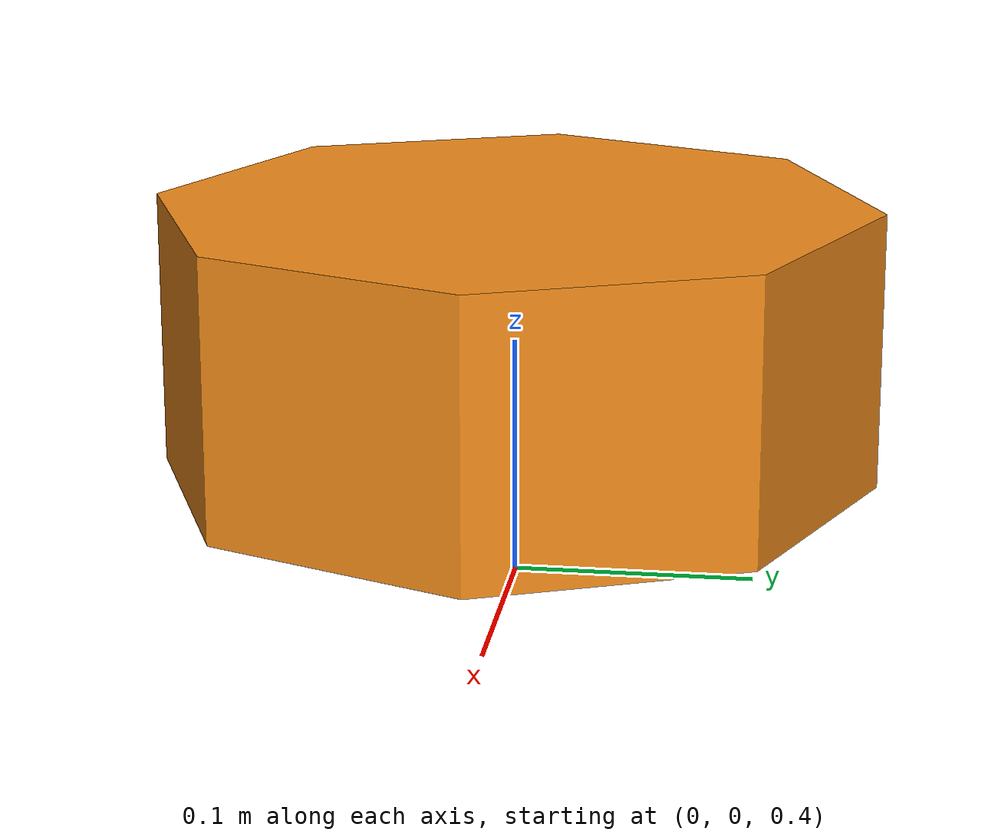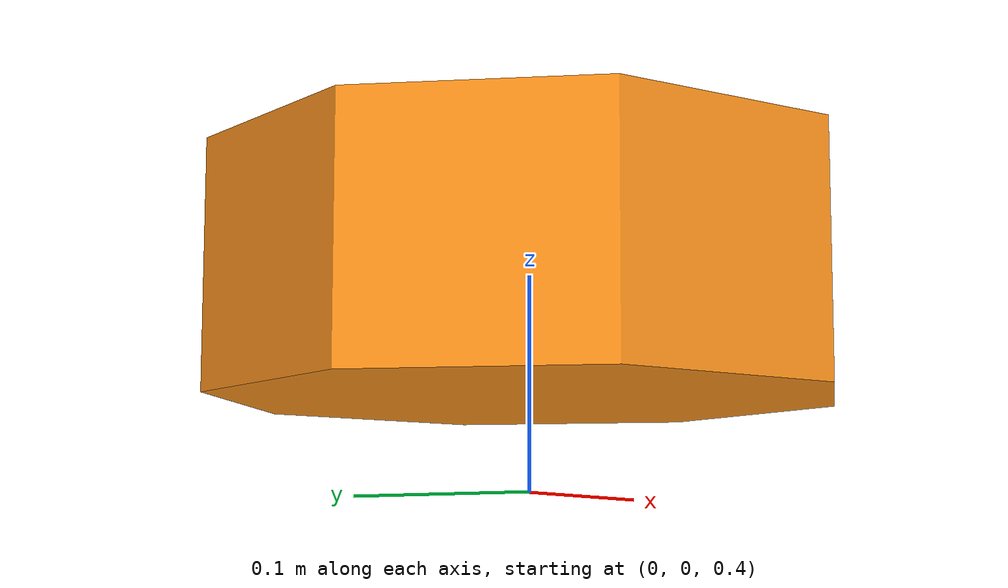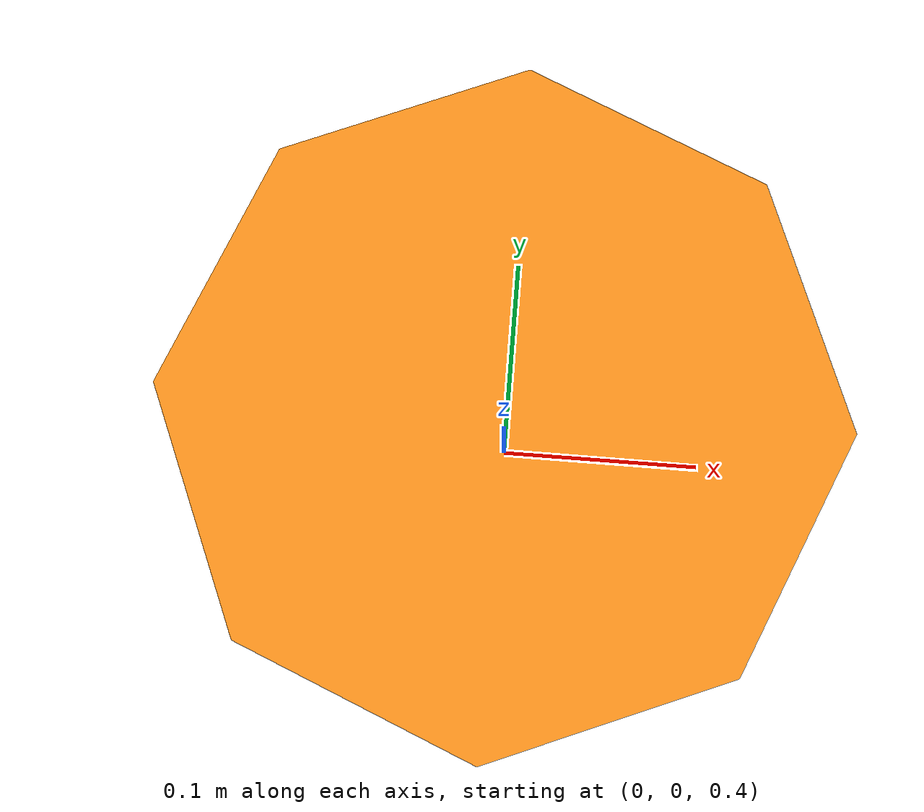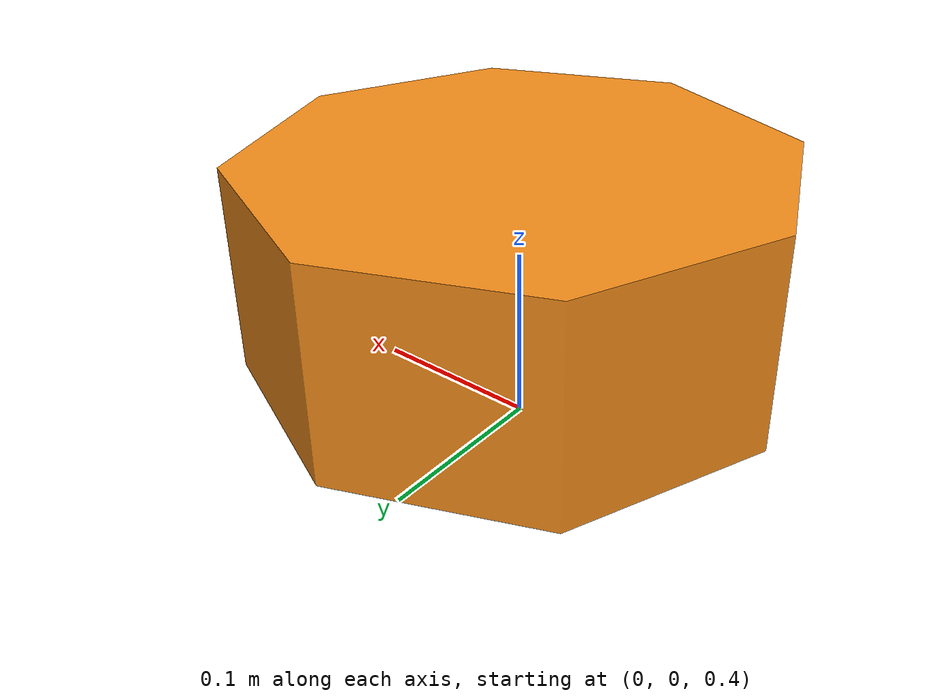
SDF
<?xml version="1.0"?>

<sdf version="1.6">
  <model name="goal">
    <pose frame=''>0 0 0.5 0 0 0</pose>
    <link name="link">

      <visual name="visual">
        <geometry>
          <mesh>
            <scale>1 1 1</scale>
            <uri>model://Target/meshes/Target.dae</uri>
          </mesh>
        </geometry>
        <material>
          <script>
              <uri>file://media/materials/scripts/gazebo.material</uri>
              <name>Gazebo/Orange</name>
            </script>
        </material>
      </visual>

      <collision name='Target_collision'>
        <geometry>
          <mesh>
            <scale>1 1 1</scale>
            <uri>model://Target/meshes/Target.STL</uri>
          </mesh>
        </geometry>
      </collision>

      <self_collide>0</self_collide>
      <kinematic>0</kinematic>
      <gravity>0</gravity>
    </link>
  </model>
</sdf>
